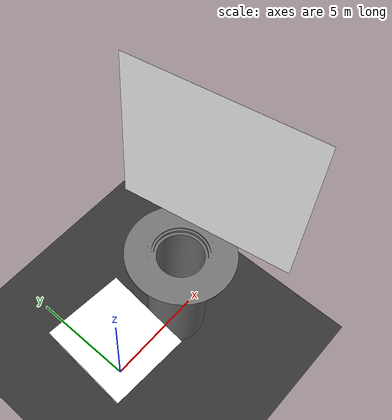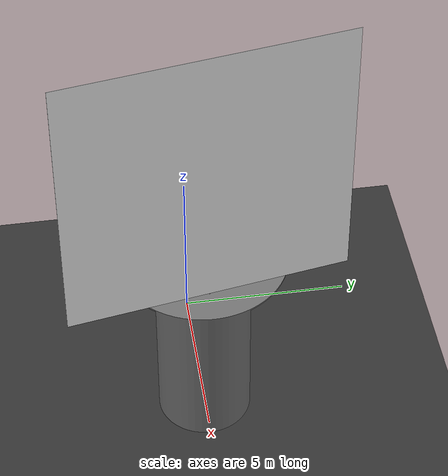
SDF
<?xml version='1.0' encoding='utf-8'?>
<sdf version="1.9">
  <world name="sewer">
    <physics name="default_physics" default="0" type="ode">
      <gravity>0 0 -9.8066</gravity>
      <max_step_size>0.004</max_step_size>
      <real_time_factor>1.0</real_time_factor>
      <real_time_update_rate>250</real_time_update_rate>
      <magnetic_field>6.0e-6 2.3e-5 -4.2e-5</magnetic_field>
    </physics>

    <plugin name="gz::sim::systems::Physics" filename="gz-sim-physics-system" />
    <plugin name="gz::sim::systems::UserCommands" filename="gz-sim-user-commands-system" />
    <plugin name="gz::sim::systems::SceneBroadcaster" filename="gz-sim-scene-broadcaster-system" />
    <plugin name="gz::sim::systems::Contact" filename="gz-sim-contact-system" />
    <plugin name="gz::sim::systems::Imu" filename="gz-sim-imu-system" />
    <plugin name="gz::sim::systems::AirPressure" filename="gz-sim-air-pressure-system" />
    <plugin name="gz::sim::systems::ApplyLinkWrench" filename="gz-sim-apply-link-wrench-system" />
    <plugin name="gz::sim::systems::Sensors" filename="gz-sim-sensors-system">
      <render_engine>ogre2</render_engine>
    </plugin>
    <plugin name="gz::sim::systems::NavSat" filename="gz-sim-navsat-system" />

    <scene>
      <ambient>0.4 0.4 0.4 1</ambient>
      <background>0.7 0.7 0.7 1</background>
      <shadows>false</shadows>
    </scene>

    <light name="sunUTC" type="directional">
      <pose>0 0 500 0 -0 0</pose>
      <cast_shadows>false</cast_shadows>
      <intensity>1</intensity>
      <direction>0.001 0.625 -0.78</direction>
      <diffuse>0.904 0.904 0.904 1</diffuse>
      <specular>0.271 0.271 0.271 1</specular>
    </light>

    <model name="ground_plane">
      <static>true</static>
      <pose>0 0 0 0 0 0</pose>
      <link name="link">
        <collision name="collision">
          <geometry>
            <plane>
              <normal>0 0 1</normal>
              <size>100 100</size>
            </plane>
          </geometry>
        </collision>
        <visual name="visual">
          <geometry>
            <plane>
              <normal>0 0 1</normal>
              <size>100 100</size>
            </plane>
          </geometry>
          <material>
            <ambient>0.2 0.2 0.2 1</ambient>
            <diffuse>0.2 0.2 0.2 1</diffuse>
          </material>
        </visual>
      </link>
    </model>

    <include>
      <name>sewer</name>

      <pose>4.0 0.0 0 0 0 0</pose>
      <uri>model://sewer_no_stairs</uri>
    </include>

    <spherical_coordinates>
      <surface_model>EARTH_WGS84</surface_model>
      <latitude_deg>47.397971057728974</latitude_deg>
      <longitude_deg>8.546163739800146</longitude_deg>
      <elevation>0</elevation>
    </spherical_coordinates>

    <model name="start_platform">
      <static>true</static>

      <pose>0.0 0 5.5 0 0 0</pose>
      <link name="link">
        <collision name="collision">
          <geometry><box><size>2.0 2.0 0.01</size></box></geometry>
        </collision>

      </link>
    </model>

  <model name="floor_base">
      <static>true</static>
      <pose>0.0 0 4.0 0.17 0.17 0</pose>
      <link name="link">
        <visual name="visual">
          <geometry><box><size>4 4 0.1</size></box></geometry>
          <material>
            <diffuse>1.0 1.0 1.0</diffuse>
            <pbr><metal><albedo_map>model://dense_checkerboard_large/materials/textures/checkerboard_dense.png</albedo_map></metal></pbr>
          </material>
        </visual>
      </link>
    </model><model name="feature_wall">
      <static>true</static>
      <pose>5.5 0 10.0 0.17 -1.57079 0</pose>
      <link name="link">
        <visual name="visual">
          <geometry><plane><normal>0 0 1</normal><size>8 8</size></plane></geometry>
          <material>
            <diffuse>1.0 1.0 1.0</diffuse>
            <pbr><metal><albedo_map>model://dense_checkerboard_large/materials/textures/checkerboard_dense.png</albedo_map></metal></pbr>
          </material>
        </visual>
      </link>
    </model></world>
</sdf>

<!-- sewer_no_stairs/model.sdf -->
<sdf version="1.5">
  <model name="sewer">
    <static>true</static>
    <pose>0.0 0.0 0 0 0 0</pose>
    <link name="sewer">
      <pose>-2.4 -2.4 0 0 0 0</pose>
      <collision name="collision">
        <geometry>
          <mesh>
            <scale>0.004 0.004 0.003</scale>
            <uri>model://sewer_no_stairs/meshes/sewer_no_stairs.stl</uri>
          </mesh>
        </geometry>
      </collision>
      <visual name="visual">
        <geometry>
          <mesh>
            <scale>0.004 0.004 0.003</scale>
            <uri>model://sewer_no_stairs/meshes/sewer_no_stairs.stl</uri>
          </mesh>
        </geometry>
        <cast_shadows>false</cast_shadows>
        <material>
          <!-- Uniform flat material: no specular/highlights → reduces FAST corner detections on tube walls -->
          <ambient>0.45 0.45 0.45 1</ambient>
          <diffuse>0.45 0.45 0.45 1</diffuse>
          <specular>0.0 0.0 0.0 0</specular>
        </material>
      </visual>
    </link>
  </model>
</sdf>
